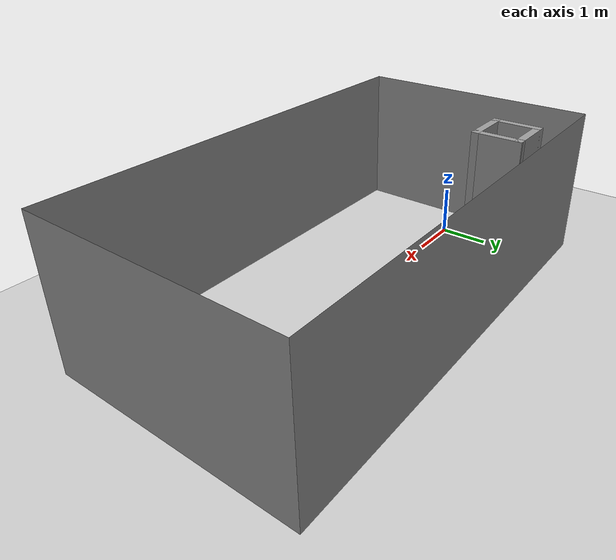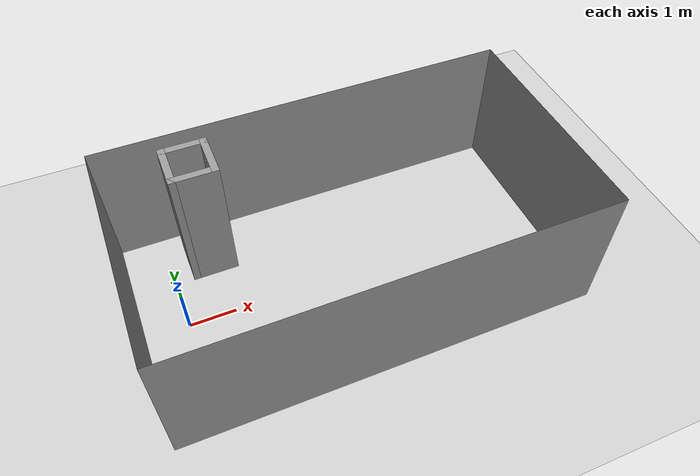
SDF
<sdf version="1.6">
 <world name="default">
  <light name="sun" type="directional">
   <pose>0 0 10 0 -0 0</pose>
   <diffuse>0.8 0.8 0.8 1</diffuse>
   <specular>0.2 0.2 0.2 1</specular>
   <attenuation>
    <range>1000</range>
    <constant>0.9</constant>
    <linear>0.01</linear>
    <quadratic>0.001</quadratic>
   </attenuation>
   <direction>-0.5 0.1 -0.9</direction>
  </light>
  <model name="ground_plane">
   <static>1</static>
   <link name="link">
    <collision name="collision">
     <geometry><plane><normal>0 0 1</normal><size>100 100</size></plane></geometry>
     <surface><friction><ode><mu>100</mu><mu2>50</mu2></ode></friction></surface>
    </collision>
    <visual name="visual">
     <cast_shadows>0</cast_shadows>
     <geometry><plane><normal>0 0 1</normal><size>100 100</size></plane></geometry>
     <material>
      <script><uri>file://media/materials/scripts/gazebo.material</uri><name>Gazebo/Grey</name></script>
     </material>
    </visual>
   </link>
  </model>
  <gravity>0 0 -9.8</gravity>
  <magnetic_field>6e-06 2.3e-05 -4.2e-05</magnetic_field>
  <atmosphere type="adiabatic"/>
  <physics name="default_physics" default="0" type="ode">
   <max_step_size>0.001</max_step_size>
   <real_time_factor>1</real_time_factor>
   <real_time_update_rate>1000</real_time_update_rate>
  </physics>
  <scene><ambient>0.4 0.4 0.4 1</ambient><background>0.7 0.7 0.7 1</background><shadows>1</shadows></scene>
  <spherical_coordinates>
   <surface_model>EARTH_WGS84</surface_model>
   <latitude_deg>0</latitude_deg>
   <longitude_deg>0</longitude_deg>
   <elevation>0</elevation>
   <heading_deg>0</heading_deg>
  </spherical_coordinates>
  <model name="ok3*5*9">
   <pose>3.57014 -0.023654 0 0 -0 0</pose>
   <link name="Wall_24">
    <collision name="Wall_24_Collision">
     <geometry><box><size>5 0 3</size></box></geometry>
     <pose>0 0 1.5 0 -0 0</pose>
    </collision>
    <visual name="Wall_24_Visual">
     <pose>0 0 1.5 0 -0 0</pose>
     <geometry><box><size>5 0 3</size></box></geometry>
     <material>
      <script><uri>file://media/materials/scripts/gazebo.material</uri><name>Gazebo/Grey</name></script>
      <ambient>1 1 1 1</ambient>
     </material>
     <meta><layer>0</layer></meta>
    </visual>
    <pose>-4.5 0 0 0 -0 -1.5708</pose>
   </link>
   <link name="Wall_25">
    <collision name="Wall_25_Collision">
     <geometry><box><size>9 0 3</size></box></geometry>
     <pose>0 0 1.5 0 -0 0</pose>
    </collision>
    <visual name="Wall_25_Visual">
     <pose>0 0 1.5 0 -0 0</pose>
     <geometry><box><size>9 0 3</size></box></geometry>
     <material>
      <script><uri>file://media/materials/scripts/gazebo.material</uri><name>Gazebo/Grey</name></script>
      <ambient>1 1 1 1</ambient>
     </material>
     <meta><layer>0</layer></meta>
    </visual>
    <pose>0 -2.5 0 0 -0 0</pose>
   </link>
   <link name="Wall_27">
    <collision name="Wall_27_Collision">
     <geometry><box><size>9 0 3</size></box></geometry>
     <pose>0 0 1.5 0 -0 0</pose>
    </collision>
    <visual name="Wall_27_Visual">
     <pose>0 0 1.5 0 -0 0</pose>
     <geometry><box><size>9 0 3</size></box></geometry>
     <material>
      <script><uri>file://media/materials/scripts/gazebo.material</uri><name>Gazebo/Grey</name></script>
      <ambient>1 1 1 1</ambient>
     </material>
     <meta><layer>0</layer></meta>
    </visual>
    <pose>0 2.5 0 0 -0 0</pose>
   </link>
   <link name="Wall_29">
    <collision name="Wall_29_Collision">
     <geometry><box><size>5 0 3</size></box></geometry>
     <pose>0 0 1.5 0 -0 0</pose>
    </collision>
    <visual name="Wall_29_Visual">
     <pose>0 0 1.5 0 -0 0</pose>
     <geometry><box><size>5 0 3</size></box></geometry>
     <material>
      <script><uri>file://media/materials/scripts/gazebo.material</uri><name>Gazebo/Grey</name></script>
      <ambient>1 1 1 1</ambient>
     </material>
     <meta><layer>0</layer></meta>
    </visual>
    <pose>4.5 0 0 0 -0 -1.5708</pose>
   </link>
   <static>1</static>
  </model>
  <model name="1*1*3zhu">
   <pose>0.884052 1.60856 0 0 -0 0</pose>
   <link name="Wall_0">
    <collision name="Wall_0_Collision">
     <geometry><box><size>1 0.15 3</size></box></geometry>
     <pose>0 0 1.5 0 -0 0</pose>
    </collision>
    <visual name="Wall_0_Visual">
     <pose>0 0 1.5 0 -0 0</pose>
     <geometry><box><size>1 0.15 3</size></box></geometry>
     <material>
      <script><uri>file://media/materials/scripts/gazebo.material</uri><name>Gazebo/Grey</name></script>
      <ambient>1 1 1 1</ambient>
     </material>
     <meta><layer>0</layer></meta>
    </visual>
    <pose>-0.425 0 0 0 -0 1.5708</pose>
   </link>
   <link name="Wall_1">
    <collision name="Wall_1_Collision">
     <geometry><box><size>1 0.15 3</size></box></geometry>
     <pose>0 0 1.5 0 -0 0</pose>
    </collision>
    <visual name="Wall_1_Visual">
     <pose>0 0 1.5 0 -0 0</pose>
     <geometry><box><size>1 0.15 3</size></box></geometry>
     <material>
      <script><uri>file://media/materials/scripts/gazebo.material</uri><name>Gazebo/Grey</name></script>
      <ambient>1 1 1 1</ambient>
     </material>
     <meta><layer>0</layer></meta>
    </visual>
    <pose>-0 0.425 0 0 -0 0</pose>
   </link>
   <link name="Wall_2">
    <collision name="Wall_2_Collision">
     <geometry><box><size>1 0.15 3</size></box></geometry>
     <pose>0 0 1.5 0 -0 0</pose>
    </collision>
    <visual name="Wall_2_Visual">
     <pose>0 0 1.5 0 -0 0</pose>
     <geometry><box><size>1 0.15 3</size></box></geometry>
     <material>
      <script><uri>file://media/materials/scripts/gazebo.material</uri><name>Gazebo/Grey</name></script>
      <ambient>1 1 1 1</ambient>
     </material>
     <meta><layer>0</layer></meta>
    </visual>
    <pose>0.425 0 0 0 -0 -1.5708</pose>
   </link>
   <link name="Wall_3">
    <collision name="Wall_3_Collision">
     <geometry><box><size>1 0.15 3</size></box></geometry>
     <pose>0 0 1.5 0 -0 0</pose>
    </collision>
    <visual name="Wall_3_Visual">
     <pose>0 0 1.5 0 -0 0</pose>
     <geometry><box><size>1 0.15 3</size></box></geometry>
     <material>
      <script><uri>file://media/materials/scripts/gazebo.material</uri><name>Gazebo/Grey</name></script>
      <ambient>1 1 1 1</ambient>
     </material>
     <meta><layer>0</layer></meta>
    </visual>
    <pose>-0 -0.425 0 0 -0 3.14159</pose>
   </link>
   <static>1</static>
  </model>
 </world>
</sdf>
